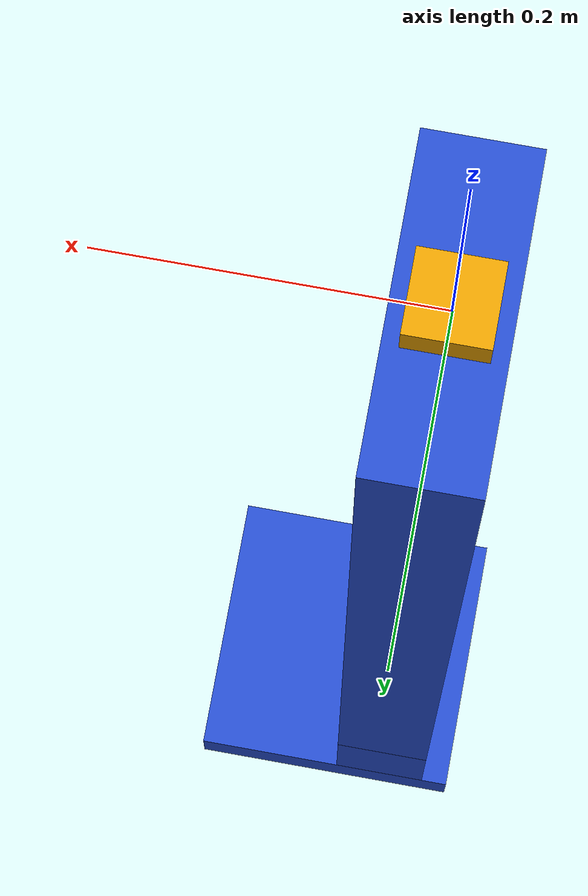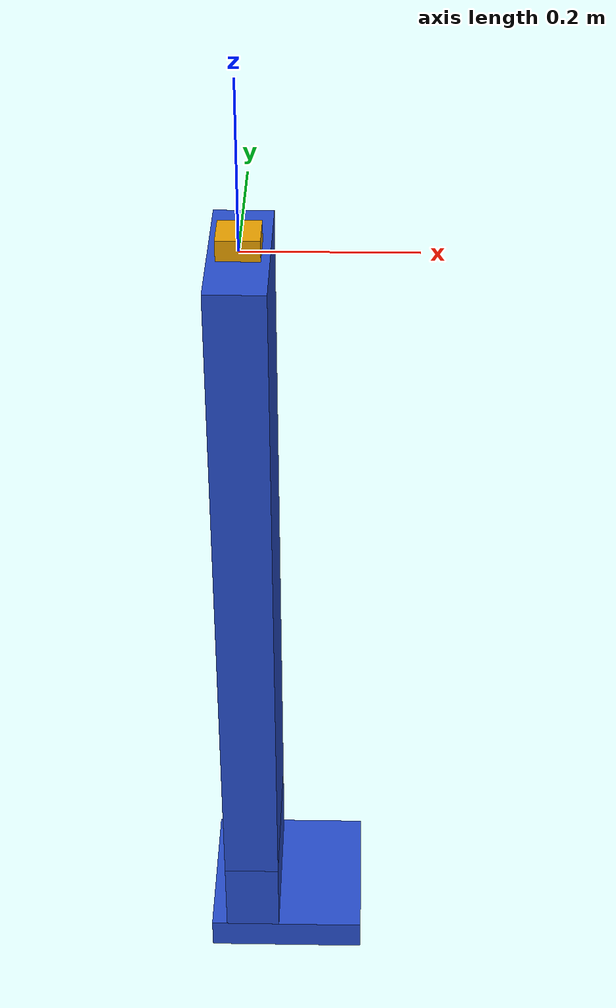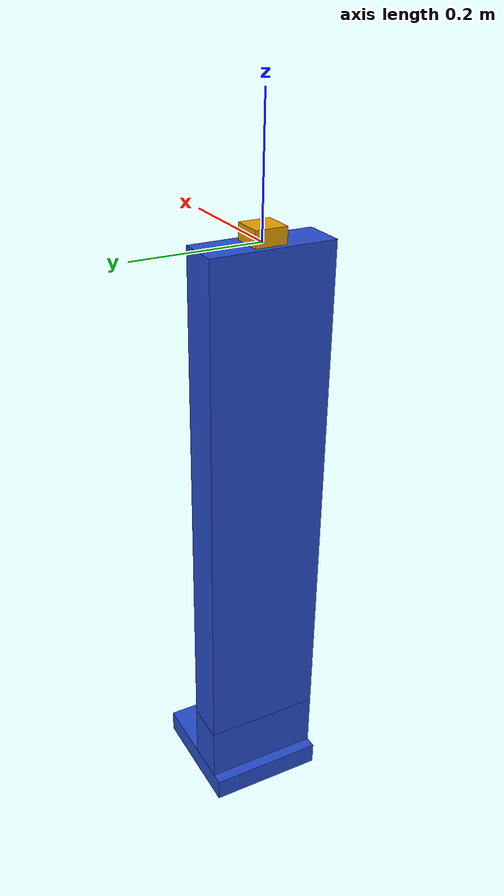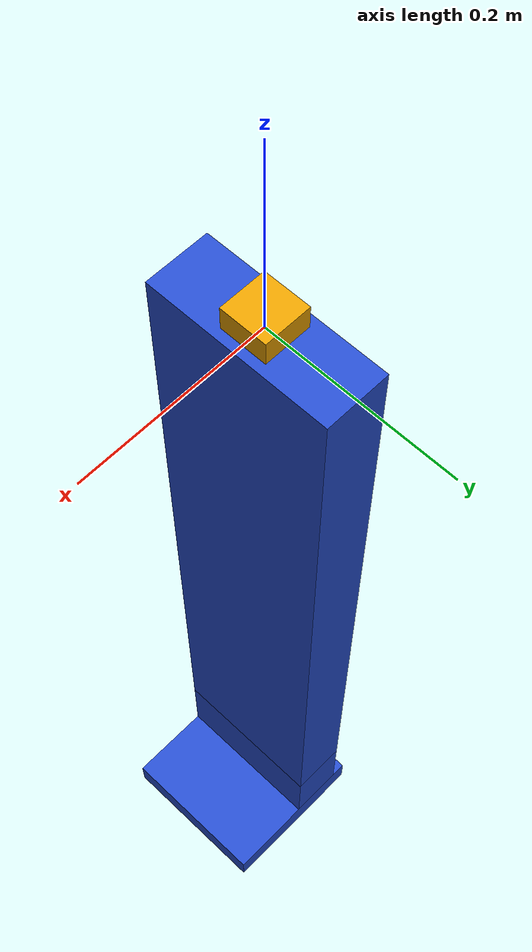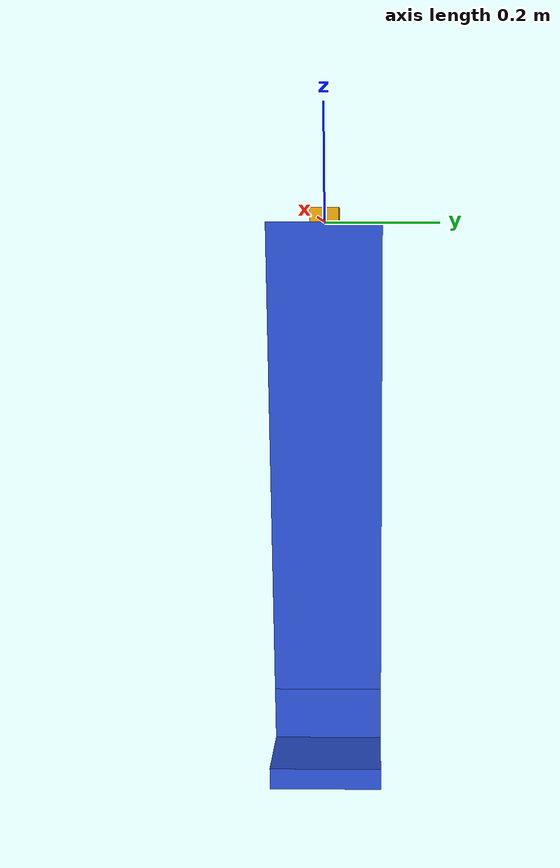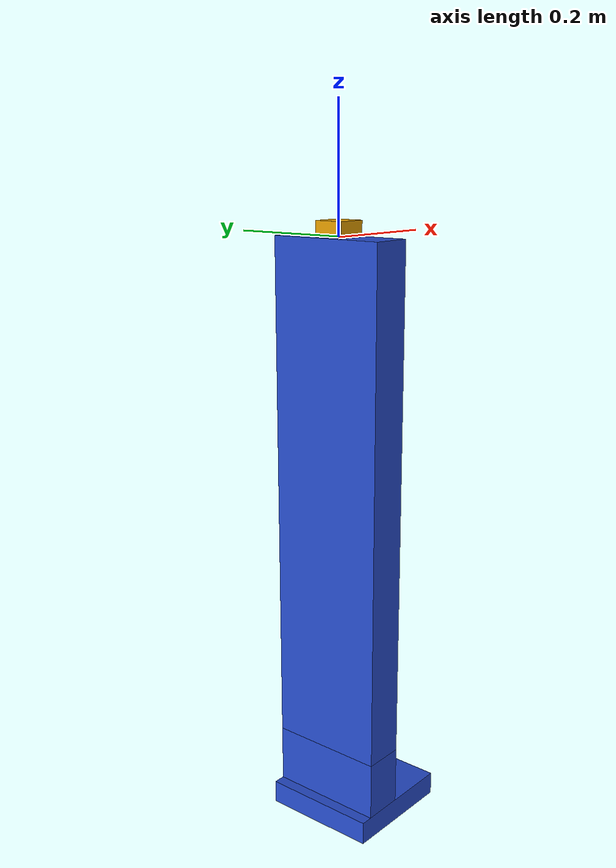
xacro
<?xml version="1.0"?>
<!-- Ghost Compass Biped -->
<robot name="gcb" xmlns:xacro="http://www.ros.org/wiki/xacro">

  <!-- Constants for robot dimensions -->
  <xacro:property name="PI" value="3.1415926535897931"/>
  <xacro:property name="leg_height" value="0.86" /> <!-- Height of leg link -->
  <xacro:property name="talus_height" value="0.1" /> <!-- Height of talus link -->
  <xacro:property name="foot_height" value="0.04" /> <!-- Height of foot link -->
  <xacro:property name="leg_width" value="0.2" /> <!-- Width of each leg link -->
  <xacro:property name="leg_girth" value="0.07" /> <!-- Girth of each leg link -->
  <xacro:property name="foot_length" value="0.2" /> <!-- Length of foot link -->
  <xacro:property name="foot_talus_disp" value="0.045" /> <!-- X displacement between talus and foot -->
  <xacro:property name="leg_mass" value="2.4" /> <!-- Leg link mass -->
  <xacro:property name="talus_mass" value="0.2" /> <!-- Talus link mass -->
  <xacro:property name="foot_mass" value="0.4" /> <!-- Foot link mass -->

  <!-- Import all Gazebo-customization elements, including Gazebo colors -->
  <xacro:include filename="$(find gcb_description)/urdf/gcb.gazebo" />
  <!-- Import Rviz colors -->
  <xacro:include filename="$(find gcb_description)/urdf/materials.xacro" />

  <!-- Used for fixing robot to Gazebo 'base_link' -->

  <!-- Left leg -->
  <link name='pelvis'>
    <collision name='collision'>
      <origin xyz="0 0 0" rpy="0 0 0"/>
      <geometry>
        <box size="0.05 0.05 0.05" />
      </geometry>
    </collision>

    <visual name='visual'>
      <origin xyz="0 0 0" rpy="0 0 0"/>
      <geometry>
        <box size="0.05 0.05 0.05" />
      </geometry>
    </visual>

    <inertial name='inertial'>
      <origin xyz="0 0 0" rpy="0 0 0"/>
      <mass value="0.01" />
      <inertia ixx="0.000004" ixy="0" ixz="0"
      		iyy="0.000004" iyz="0"
      		izz="0.000004" />
    </inertial>
  </link>

  <link name='left_leg'>
    <collision name='collision'>
      <origin xyz="0 0 ${-leg_height/2}" rpy="0 0 0"/>
      <geometry>
        <box size="${leg_girth} ${leg_width} ${leg_height}" />
      </geometry>
    </collision>

    <visual name='visual'>
      <origin xyz="0 0 ${-leg_height/2}" rpy="0 0 0"/>
      <geometry>
        <box size="${leg_girth} ${leg_width} ${leg_height}" />
      </geometry>
    </visual>

    <inertial name='inertial'>
      <origin xyz="0 0 ${-leg_height/2}" rpy="0 0 0"/>
      <mass value="${leg_mass}" />
      <inertia ixx="${1/12*leg_mass*(leg_height*leg_height+leg_width*leg_width)}" ixy="0" ixz="0"
      		iyy="${1/12*leg_mass*(leg_height*leg_height+leg_girth*leg_girth)}" iyz="0"
      		izz="${1/12*leg_mass*(leg_girth*leg_girth+leg_width*leg_width)}" />
    </inertial>
  </link>

  <link name='left_talus'>
    <collision name='collision'>
      <origin xyz="0 0 ${-talus_height/2}" rpy="0 0 0"/>
      <geometry>
        <box size="${leg_girth} ${leg_width} ${talus_height}" />
      </geometry>
    </collision>

    <visual name='visual'>
      <origin xyz="0 0 ${-talus_height/2}" rpy="0 0 0"/>
      <geometry>
        <box size="${leg_girth} ${leg_width} ${talus_height}" />
      </geometry>
    </visual>

    <inertial name='inertial'>
      <origin xyz="0 0 ${-talus_height/2}" rpy="0 0 0"/>
      <mass value="${talus_mass}" />
      <inertia ixx="${1/12*talus_mass*(talus_height*talus_height+leg_width*leg_width)}" ixy="0" ixz="0"
      		iyy="${1/12*talus_mass*(talus_height*talus_height+leg_girth*leg_girth)}" iyz="0"
      		izz="${1/12*talus_mass*(leg_girth*leg_girth+leg_width*leg_width)}" />
    </inertial>
  </link>

  <link name='left_foot'>
    <collision name='collision'>
      <origin xyz="0 0 ${-foot_height/2}" rpy="0 0 0"/>
      <geometry>
        <box size="${foot_length} ${leg_width} ${foot_height}" />
      </geometry>
    </collision>

    <visual name='visual'>
      <origin xyz="0 0 ${-foot_height/2}" rpy="0 0 0"/>
      <geometry>
        <box size="${foot_length} ${leg_width} ${foot_height}" />
      </geometry>
    </visual>

    <inertial name='inertial'>
      <origin xyz="0 0 ${-foot_height/2}" rpy="0 0 0"/>
      <mass value="${foot_mass}" />
      <inertia ixx="${1/12*foot_mass*(foot_height*foot_height+leg_width*leg_width)}" ixy="0" ixz="0"
      		iyy="${1/12*foot_mass*(foot_height*foot_height+foot_length*foot_length)}" iyz="0"
      		izz="${1/12*foot_mass*(foot_length*foot_length+leg_width*leg_width)}" />
    </inertial>
  </link>

  <!-- Right leg -->
  <link name='right_leg'>
    <collision name='collision'>
      <origin xyz="0 0 ${-leg_height/2}" rpy="0 0 0"/>
      <geometry>
        <box size="${leg_girth} ${leg_width} ${leg_height}" />
      </geometry>
    </collision>

    <visual name='visual'>
      <origin xyz="0 0 ${-leg_height/2}" rpy="0 0 0"/>
      <geometry>
        <box size="${leg_girth} ${leg_width} ${leg_height}" />
      </geometry>
    </visual>

    <inertial name='inertial'>
      <origin xyz="0 0 ${-leg_height/2}" rpy="0 0 0"/>
      <mass value="${leg_mass}" />
      <inertia ixx="${1/12*leg_mass*(leg_height*leg_height+leg_width*leg_width)}" ixy="0" ixz="0"
      		iyy="${1/12*leg_mass*(leg_height*leg_height+leg_girth*leg_girth)}" iyz="0"
      		izz="${1/12*leg_mass*(leg_girth*leg_girth+leg_width*leg_width)}" />
    </inertial>
  </link>

  <link name='right_talus'>
    <collision name='collision'>
      <origin xyz="0 0 ${-talus_height/2}" rpy="0 0 0"/>
      <geometry>
        <box size="${leg_girth} ${leg_width} ${talus_height}" />
      </geometry>
    </collision>

    <visual name='visual'>
      <origin xyz="0 0 ${-talus_height/2}" rpy="0 0 0"/>
      <geometry>
        <box size="${leg_girth} ${leg_width} ${talus_height}" />
      </geometry>
    </visual>

    <inertial name='inertial'>
      <origin xyz="0 0 ${-talus_height/2}" rpy="0 0 0"/>
      <mass value="${talus_mass}" />
      <inertia ixx="${1/12*talus_mass*(talus_height*talus_height+leg_width*leg_width)}" ixy="0" ixz="0"
      		iyy="${1/12*talus_mass*(talus_height*talus_height+leg_girth*leg_girth)}" iyz="0"
      		izz="${1/12*talus_mass*(leg_girth*leg_girth+leg_width*leg_width)}" />
    </inertial>
  </link>

  <link name='right_foot'>
    <collision name='collision'>
      <origin xyz="0 0 ${-foot_height/2}" rpy="0 0 0"/>
      <geometry>
        <box size="${foot_length} ${leg_width} ${foot_height}" />
      </geometry>

    </collision>
    <sensor name="bumper_front" type="contact">
        <always_on>true</always_on>
        <update_rate>10</update_rate>
        <visualize>true</visualize>
        <pose>0 0 0   0 0 0</pose>
        <topic>bumper_base</topic>
        <contact>
            <collision>right_foot_collision></collision>
            <topic>bumper_base</topic>
        </contact>

        <plugin name="gazebo_ros_bumper" filename="libgazebo_ros_bumper.so">
            <bumperTopicName>bumper_base</bumperTopicName>
            <frameName>bumper_base</frameName>
        </plugin>
    </sensor>
    <visual name='visual'>
      <origin xyz="0 0 ${-foot_height/2}" rpy="0 0 0"/>
      <geometry>
        <box size="${foot_length} ${leg_width} ${foot_height}" />
      </geometry>
    </visual>

    <inertial name='inertial'>
      <origin xyz="0 0 ${-foot_height/2}" rpy="0 0 0"/>
      <mass value="${foot_mass}" />
      <inertia ixx="${1/12*foot_mass*(foot_height*foot_height+leg_width*leg_width)}" ixy="0" ixz="0"
      		iyy="${1/12*foot_mass*(foot_height*foot_height+foot_length*foot_length)}" iyz="0"
      		izz="${1/12*foot_mass*(foot_length*foot_length+leg_width*leg_width)}" />
    </inertial>
  </link>
  <!-- Joints -->
  <joint name="pelvis_joint" type="fixed">
    <origin xyz="0 0 0" rpy="0 0 0"/>
    <parent link="left_leg"/>
    <child link="pelvis"/>
  </joint>

  <joint name="hip" type="revolute">
    <origin xyz="0 0 0" rpy="0 0 0"/>
    <axis xyz="0 1 0"/>
    <parent link="left_leg"/>
    <child link="right_leg"/>
    <dynamics damping="0.1" friction="0.0"/>
    <limit effort="2000" lower="-1.57" upper="1.57" velocity="12"/>
    <safety_controller k_position="100" k_velocity="10" soft_lower_limit="-1.47" soft_upper_limit="1.47"/>
  </joint>

  <joint name="left_ankle" type="revolute">
    <origin xyz="0 0 ${-leg_height}" rpy="0 0 0"/>
    <axis xyz="0 1 0"/>
    <parent link="left_leg"/>
    <child link="left_talus"/>
    <dynamics damping="0.1" friction="0.0"/>
    <limit effort="2000" lower="-1.65" upper="1.3" velocity="12"/>
    <safety_controller k_position="100" k_velocity="10" soft_lower_limit="-1.55" soft_upper_limit="1.2"/>
  </joint>

  <joint name="left_foot_ligament" type="fixed">
    <origin xyz="${foot_talus_disp} 0 ${-talus_height}" rpy="0 0 0"/>
    <parent link="left_talus"/>
    <child link="left_foot"/>
  </joint>

  <joint name="right_ankle" type="revolute">
    <origin xyz="0 0 ${-leg_height}" rpy="0 0 0"/>
    <axis xyz="0 1 0"/>
    <parent link="right_leg"/>
    <child link="right_talus"/>
    <dynamics damping="0.1" friction="0.0"/>
    <limit effort="2000" lower="-1.65" upper="1.3" velocity="12"/>
    <safety_controller k_position="100" k_velocity="10" soft_lower_limit="-1.55" soft_upper_limit="1.2"/>
  </joint>

  <joint name="right_foot_ligament" type="fixed">
    <origin xyz="${foot_talus_disp} 0 ${-talus_height}" rpy="0 0 0"/>
    <parent link="right_talus"/>
    <child link="right_foot"/>
  </joint>

  <transmission name="hip_tran">
    <type>transmission_interface/SimpleTransmission</type>
    <joint name="hip"/>
    <actuator name="hip_motor">
      <hardwareInterface>EffortJointInterface</hardwareInterface>
      <mechanicalReduction>1</mechanicalReduction>
    </actuator>
  </transmission>

  <transmission name="lankle_tran">
    <type>transmission_interface/SimpleTransmission</type>
    <joint name="left_ankle"/>
    <actuator name="lankle_motor">
      <hardwareInterface>EffortJointInterface</hardwareInterface>
      <mechanicalReduction>1</mechanicalReduction>
    </actuator>
  </transmission>

  <transmission name="rankle_tran">
    <type>transmission_interface/SimpleTransmission</type>
    <joint name="right_ankle"/>
    <actuator name="rankle_motor">
      <hardwareInterface>EffortJointInterface</hardwareInterface>
      <mechanicalReduction>1</mechanicalReduction>
    </actuator>
  </transmission>

</robot>
